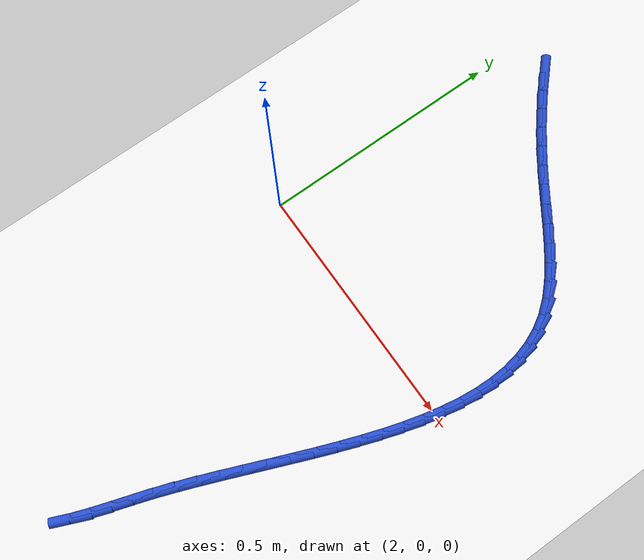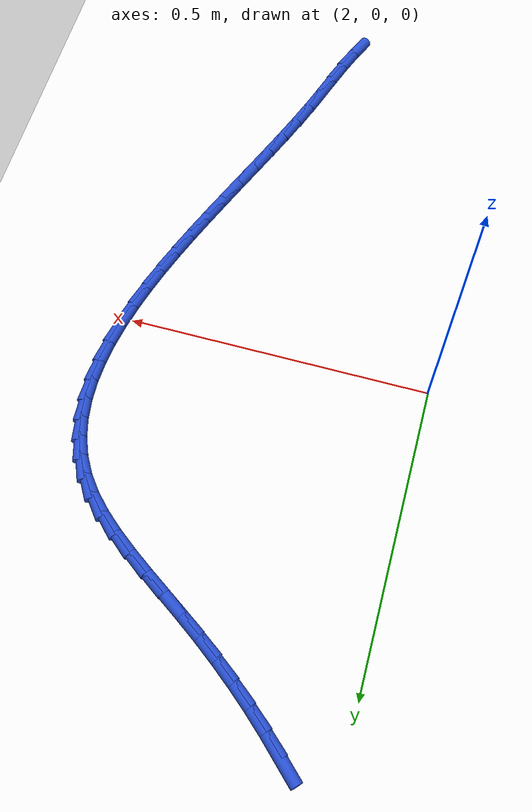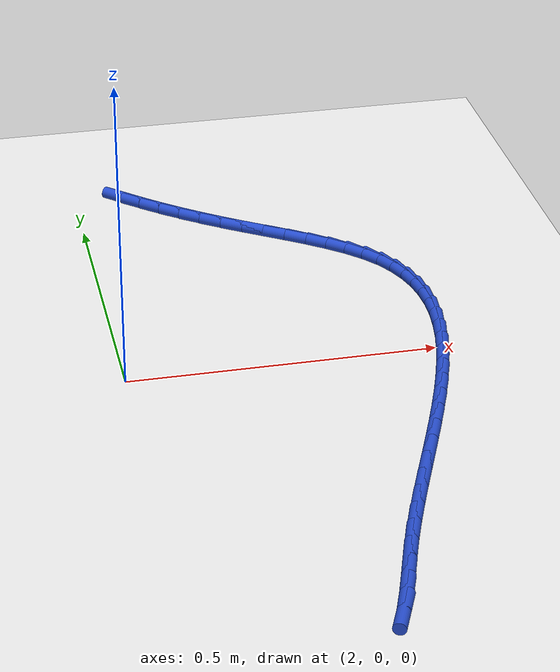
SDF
<sdf version="1.6">
 <world name="default">
  <model name="ground_plane">
   <static>1</static>
   <link name="link">
    <collision name="collision">
     <geometry><plane><normal>0 0 1</normal><size>100 100</size></plane></geometry>
     <surface><friction><ode><mu>100</mu><mu2>50</mu2></ode></friction></surface>
    </collision>
    <visual name="visual">
     <cast_shadows>0</cast_shadows>
     <geometry><plane><normal>0 0 1</normal><size>100 100</size></plane></geometry>
     <material>
      <script><uri>file://media/materials/scripts/gazebo.material</uri><name>Gazebo/WhiteGlow</name></script>
     </material>
    </visual>
   </link>
  </model>
  <model name="line">
   <link name="link_95">
    <pose>2.0854577750465038 0.6033049746683188 0.01 0 1.57 -0.7584106347715007</pose>
    <collision name="collision">
     <geometry><cylinder><radius>0.01</radius><length>0.08</length></cylinder></geometry>
    </collision>
    <visual name="visual">
     <material>
      <script><name>Gazebo/Blue</name><uri>file://media/materials/scripts/gazebo.material</uri></script>
     </material>
     <geometry><cylinder><radius>0.01</radius><length>0.08</length></cylinder></geometry>
    </visual>
   </link>
   <link name="link_96">
    <pose>2.114498743311361 0.5757906642588572 0.01 0 1.57 -0.7253716023526059</pose>
    <collision name="collision">
     <geometry><cylinder><radius>0.01</radius><length>0.08</length></cylinder></geometry>
    </collision>
    <visual name="visual">
     <material>
      <script><name>Gazebo/Blue</name><uri>file://media/materials/scripts/gazebo.material</uri></script>
     </material>
     <geometry><cylinder><radius>0.01</radius><length>0.08</length></cylinder></geometry>
    </visual>
   </link>
   <link name="link_97">
    <pose>2.144657502411811 0.5490514055206867 0.01 0 1.57 -0.6937568444363156</pose>
    <collision name="collision">
     <geometry><cylinder><radius>0.01</radius><length>0.08</length></cylinder></geometry>
    </collision>
    <visual name="visual">
     <material>
      <script><name>Gazebo/Blue</name><uri>file://media/materials/scripts/gazebo.material</uri></script>
     </material>
     <geometry><cylinder><radius>0.01</radius><length>0.08</length></cylinder></geometry>
    </visual>
   </link>
   <link name="link_98">
    <pose>2.175849003187169 0.5231103167277441 0.01 0 1.57 -0.6634165737298975</pose>
    <collision name="collision">
     <geometry><cylinder><radius>0.01</radius><length>0.08</length></cylinder></geometry>
    </collision>
    <visual name="visual">
     <material>
      <script><name>Gazebo/Blue</name><uri>file://media/materials/scripts/gazebo.material</uri></script>
     </material>
     <geometry><cylinder><radius>0.01</radius><length>0.08</length></cylinder></geometry>
    </visual>
   </link>
   <link name="link_99">
    <pose>2.207988196476752 0.49799051615396644 0.01 0 1.57 -0.6342063473897935</pose>
    <collision name="collision">
     <geometry><cylinder><radius>0.01</radius><length>0.08</length></cylinder></geometry>
    </collision>
    <visual name="visual">
     <material>
      <script><name>Gazebo/Blue</name><uri>file://media/materials/scripts/gazebo.material</uri></script>
     </material>
     <geometry><cylinder><radius>0.01</radius><length>0.08</length></cylinder></geometry>
    </visual>
   </link>
   <link name="link_100">
    <pose>2.2409900331198744 0.4737151220732913 0.01 0 1.57 -0.6064828053947958</pose>
    <collision name="collision">
     <geometry><cylinder><radius>0.01</radius><length>0.08</length></cylinder></geometry>
    </collision>
    <visual name="visual">
     <material>
      <script><name>Gazebo/Blue</name><uri>file://media/materials/scripts/gazebo.material</uri></script>
     </material>
     <geometry><cylinder><radius>0.01</radius><length>0.08</length></cylinder></geometry>
    </visual>
   </link>
   <link name="link_101">
    <pose>2.274750701201509 0.4502954688941986 0.01 0 1.57 -0.5886555911151671</pose>
    <collision name="collision">
     <geometry><cylinder><radius>0.01</radius><length>0.08</length></cylinder></geometry>
    </collision>
    <visual name="visual">
     <material>
      <script><name>Gazebo/Blue</name><uri>file://media/materials/scripts/gazebo.material</uri></script>
     </material>
     <geometry><cylinder><radius>0.01</radius><length>0.08</length></cylinder></geometry>
    </visual>
   </link>
   <link name="link_102">
    <pose>2.308839381430467 0.4275375154788397 0.01 0 1.57 -0.5878506283056106</pose>
    <collision name="collision">
     <geometry><cylinder><radius>0.01</radius><length>0.08</length></cylinder></geometry>
    </collision>
    <visual name="visual">
     <material>
      <script><name>Gazebo/Blue</name><uri>file://media/materials/scripts/gazebo.material</uri></script>
     </material>
     <geometry><cylinder><radius>0.01</radius><length>0.08</length></cylinder></geometry>
    </visual>
   </link>
   <link name="link_103">
    <pose>2.3425475441071213 0.4050728058870897 0.01 0 1.57 -0.6049039102393619</pose>
    <collision name="collision">
     <geometry><cylinder><radius>0.01</radius><length>0.08</length></cylinder></geometry>
    </collision>
    <visual name="visual">
     <material>
      <script><name>Gazebo/Blue</name><uri>file://media/materials/scripts/gazebo.material</uri></script>
     </material>
     <geometry><cylinder><radius>0.01</radius><length>0.08</length></cylinder></geometry>
    </visual>
   </link>
   <link name="link_104">
    <pose>2.3751578387687227 0.38252734433729074 0.01 0 1.57 -0.641500957812803</pose>
    <collision name="collision">
     <geometry><cylinder><radius>0.01</radius><length>0.08</length></cylinder></geometry>
    </collision>
    <visual name="visual">
     <material>
      <script><name>Gazebo/Blue</name><uri>file://media/materials/scripts/gazebo.material</uri></script>
     </material>
     <geometry><cylinder><radius>0.01</radius><length>0.08</length></cylinder></geometry>
    </visual>
   </link>
   <link name="link_105">
    <pose>2.405952914952524 0.35952713504778383 0.01 0 1.57 -0.7004918208982428</pose>
    <collision name="collision">
     <geometry><cylinder><radius>0.01</radius><length>0.08</length></cylinder></geometry>
    </collision>
    <visual name="visual">
     <material>
      <script><name>Gazebo/Blue</name><uri>file://media/materials/scripts/gazebo.material</uri></script>
     </material>
     <geometry><cylinder><radius>0.01</radius><length>0.08</length></cylinder></geometry>
    </visual>
   </link>
   <link name="link_106">
    <pose>2.434215422195778 0.33569818223691134 0.01 0 1.57 -0.7857799107825099</pose>
    <collision name="collision">
     <geometry><cylinder><radius>0.01</radius><length>0.08</length></cylinder></geometry>
    </collision>
    <visual name="visual">
     <material>
      <script><name>Gazebo/Blue</name><uri>file://media/materials/scripts/gazebo.material</uri></script>
     </material>
     <geometry><cylinder><radius>0.01</radius><length>0.08</length></cylinder></geometry>
    </visual>
   </link>
   <link name="link_107">
    <pose>2.459228010035737 0.31066649012301445 0.01 0 1.57 -0.9014815843649162</pose>
    <collision name="collision">
     <geometry><cylinder><radius>0.01</radius><length>0.08</length></cylinder></geometry>
    </collision>
    <visual name="visual">
     <material>
      <script><name>Gazebo/Blue</name><uri>file://media/materials/scripts/gazebo.material</uri></script>
     </material>
     <geometry><cylinder><radius>0.01</radius><length>0.08</length></cylinder></geometry>
    </visual>
   </link>
   <link name="link_108">
    <pose>2.480277383181496 0.2840600881281208 0.01 0 1.57 -1.0386955093817873</pose>
    <collision name="collision">
     <geometry><cylinder><radius>0.01</radius><length>0.08</length></cylinder></geometry>
    </collision>
    <visual name="visual">
     <material>
      <script><name>Gazebo/Blue</name><uri>file://media/materials/scripts/gazebo.material</uri></script>
     </material>
     <geometry><cylinder><radius>0.01</radius><length>0.08</length></cylinder></geometry>
    </visual>
   </link>
   <link name="link_109">
    <pose>2.496988377695209 0.2556758727135417 0.01 0 1.57 -1.1744489095808566</pose>
    <collision name="collision">
     <geometry><cylinder><radius>0.01</radius><length>0.08</length></cylinder></geometry>
    </collision>
    <visual name="visual">
     <material>
      <script><name>Gazebo/Blue</name><uri>file://media/materials/scripts/gazebo.material</uri></script>
     </material>
     <geometry><cylinder><radius>0.01</radius><length>0.08</length></cylinder></geometry>
    </visual>
   </link>
   <link name="link_110">
    <pose>2.5095732434947133 0.22560410218871085 0.01 0 1.57 -1.3015843641063687</pose>
    <collision name="collision">
     <geometry><cylinder><radius>0.01</radius><length>0.08</length></cylinder></geometry>
    </collision>
    <visual name="visual">
     <material>
      <script><name>Gazebo/Blue</name><uri>file://media/materials/scripts/gazebo.material</uri></script>
     </material>
     <geometry><cylinder><radius>0.01</radius><length>0.08</length></cylinder></geometry>
    </visual>
   </link>
   <link name="link_111">
    <pose>2.5183029608211194 0.19396436552322818 0.01 0 1.57 -1.416521543204537</pose>
    <collision name="collision">
     <geometry><cylinder><radius>0.01</radius><length>0.08</length></cylinder></geometry>
    </collision>
    <visual name="visual">
     <material>
      <script><name>Gazebo/Blue</name><uri>file://media/materials/scripts/gazebo.material</uri></script>
     </material>
     <geometry><cylinder><radius>0.01</radius><length>0.08</length></cylinder></geometry>
    </visual>
   </link>
   <link name="link_112">
    <pose>2.5234485099155424 0.16087625168669223 0.01 0 1.57 -1.517606392508967</pose>
    <collision name="collision">
     <geometry><cylinder><radius>0.01</radius><length>0.08</length></cylinder></geometry>
    </collision>
    <visual name="visual">
     <material>
      <script><name>Gazebo/Blue</name><uri>file://media/materials/scripts/gazebo.material</uri></script>
     </material>
     <geometry><cylinder><radius>0.01</radius><length>0.08</length></cylinder></geometry>
    </visual>
   </link>
   <link name="link_113">
    <pose>2.5252808710190906 0.12645934964870295 0.01 0 1.57 1.5368498145802738</pose>
    <collision name="collision">
     <geometry><cylinder><radius>0.01</radius><length>0.08</length></cylinder></geometry>
    </collision>
    <visual name="visual">
     <material>
      <script><name>Gazebo/Blue</name><uri>file://media/materials/scripts/gazebo.material</uri></script>
     </material>
     <geometry><cylinder><radius>0.01</radius><length>0.08</length></cylinder></geometry>
    </visual>
   </link>
   <link name="link_114">
    <pose>2.524071024372879 0.09083324837885881 0.01 0 1.57 1.4627885748509004</pose>
    <collision name="collision">
     <geometry><cylinder><radius>0.01</radius><length>0.08</length></cylinder></geometry>
    </collision>
    <visual name="visual">
     <material>
      <script><name>Gazebo/Blue</name><uri>file://media/materials/scripts/gazebo.material</uri></script>
     </material>
     <geometry><cylinder><radius>0.01</radius><length>0.08</length></cylinder></geometry>
    </visual>
   </link>
   <link name="link_115">
    <pose>2.520089950218018 0.054117536846759864 0.01 0 1.57 1.4004790890435928</pose>
    <collision name="collision">
     <geometry><cylinder><radius>0.01</radius><length>0.08</length></cylinder></geometry>
    </collision>
    <visual name="visual">
     <material>
      <script><name>Gazebo/Blue</name><uri>file://media/materials/scripts/gazebo.material</uri></script>
     </material>
     <geometry><cylinder><radius>0.01</radius><length>0.08</length></cylinder></geometry>
    </visual>
   </link>
   <link name="link_116">
    <pose>2.5136086287956205 0.016431804022004958 0.01 0 1.57 1.3484953368697115</pose>
    <collision name="collision">
     <geometry><cylinder><radius>0.01</radius><length>0.08</length></cylinder></geometry>
    </collision>
    <visual name="visual">
     <material>
      <script><name>Gazebo/Blue</name><uri>file://media/materials/scripts/gazebo.material</uri></script>
     </material>
     <geometry><cylinder><radius>0.01</radius><length>0.08</length></cylinder></geometry>
    </visual>
   </link>
   <link name="link_117">
    <pose>2.504898040346798 -0.022104361125807614 0.01 0 1.57 1.3054999922596893</pose>
    <collision name="collision">
     <geometry><cylinder><radius>0.01</radius><length>0.08</length></cylinder></geometry>
    </collision>
    <visual name="visual">
     <material>
      <script><name>Gazebo/Blue</name><uri>file://media/materials/scripts/gazebo.material</uri></script>
     </material>
     <geometry><cylinder><radius>0.01</radius><length>0.08</length></cylinder></geometry>
    </visual>
   </link>
   <link name="link_118">
    <pose>2.4942291651126633 -0.061371369627076754 0.01 0 1.57 1.2703297530629334</pose>
    <collision name="collision">
     <geometry><cylinder><radius>0.01</radius><length>0.08</length></cylinder></geometry>
    </collision>
    <visual name="visual">
     <material>
      <script><name>Gazebo/Blue</name><uri>file://media/materials/scripts/gazebo.material</uri></script>
     </material>
     <geometry><cylinder><radius>0.01</radius><length>0.08</length></cylinder></geometry>
    </visual>
   </link>
   <link name="link_119">
    <pose>2.4818729833343287 -0.10124963251220417 0.01 0 1.57 1.2420205333198986</pose>
    <collision name="collision">
     <geometry><cylinder><radius>0.01</radius><length>0.08</length></cylinder></geometry>
    </collision>
    <visual name="visual">
     <material>
      <script><name>Gazebo/Blue</name><uri>file://media/materials/scripts/gazebo.material</uri></script>
     </material>
     <geometry><cylinder><radius>0.01</radius><length>0.08</length></cylinder></geometry>
    </visual>
   </link>
   <link name="link_120">
    <pose>2.468100475252906 -0.14161956081159058 0.01 0 1.57 1.2198033846943448</pose>
    <collision name="collision">
     <geometry><cylinder><radius>0.01</radius><length>0.08</length></cylinder></geometry>
    </collision>
    <visual name="visual">
     <material>
      <script><name>Gazebo/Blue</name><uri>file://media/materials/scripts/gazebo.material</uri></script>
     </material>
     <geometry><cylinder><radius>0.01</radius><length>0.08</length></cylinder></geometry>
    </visual>
   </link>
   <link name="link_121">
    <pose>2.4531826211095065 -0.1823615655556367 0.01 0 1.57 1.203089065928777</pose>
    <collision name="collision">
     <geometry><cylinder><radius>0.01</radius><length>0.08</length></cylinder></geometry>
    </collision>
    <visual name="visual">
     <material>
      <script><name>Gazebo/Blue</name><uri>file://media/materials/scripts/gazebo.material</uri></script>
     </material>
     <geometry><cylinder><radius>0.01</radius><length>0.08</length></cylinder></geometry>
    </visual>
   </link>
   <link name="link_122">
    <pose>2.437390401145244 -0.2233560577747445 0.01 0 1.57 1.1914506917664192</pose>
    <collision name="collision">
     <geometry><cylinder><radius>0.01</radius><length>0.08</length></cylinder></geometry>
    </collision>
    <visual name="visual">
     <material>
      <script><name>Gazebo/Blue</name><uri>file://media/materials/scripts/gazebo.material</uri></script>
     </material>
     <geometry><cylinder><radius>0.01</radius><length>0.08</length></cylinder></geometry>
    </visual>
   </link>
   <link name="link_123">
    <pose>2.420994795601228 -0.2644834484993125 0.01 0 1.57 1.1846090582874373</pose>
    <collision name="collision">
     <geometry><cylinder><radius>0.01</radius><length>0.08</length></cylinder></geometry>
    </collision>
    <visual name="visual">
     <material>
      <script><name>Gazebo/Blue</name><uri>file://media/materials/scripts/gazebo.material</uri></script>
     </material>
     <geometry><cylinder><radius>0.01</radius><length>0.08</length></cylinder></geometry>
    </visual>
   </link>
   <link name="link_124">
    <pose>2.4042667847185735 -0.30562414875974264 0.01 0 1.57 1.1824227588283078</pose>
    <collision name="collision">
     <geometry><cylinder><radius>0.01</radius><length>0.08</length></cylinder></geometry>
    </collision>
    <visual name="visual">
     <material>
      <script><name>Gazebo/Blue</name><uri>file://media/materials/scripts/gazebo.material</uri></script>
     </material>
     <geometry><cylinder><radius>0.01</radius><length>0.08</length></cylinder></geometry>
    </visual>
   </link>
   <link name="link_125">
    <pose>2.387477348738391 -0.3466585695864356 0.01 0 1.57 1.1848840761501118</pose>
    <collision name="collision">
     <geometry><cylinder><radius>0.01</radius><length>0.08</length></cylinder></geometry>
    </collision>
    <visual name="visual">
     <material>
      <script><name>Gazebo/Blue</name><uri>file://media/materials/scripts/gazebo.material</uri></script>
     </material>
     <geometry><cylinder><radius>0.01</radius><length>0.08</length></cylinder></geometry>
    </visual>
   </link>
   <link name="link_126">
    <pose>2.370897467901792 -0.38746712200979294 0.01 0 1.57 1.1921212350513166</pose>
    <collision name="collision">
     <geometry><cylinder><radius>0.01</radius><length>0.08</length></cylinder></geometry>
    </collision>
    <visual name="visual">
     <material>
      <script><name>Gazebo/Blue</name><uri>file://media/materials/scripts/gazebo.material</uri></script>
     </material>
     <geometry><cylinder><radius>0.01</radius><length>0.08</length></cylinder></geometry>
    </visual>
   </link>
   <link name="link_127">
    <pose>2.354798122449891 -0.42793021706021395 0.01 0 1.57 1.2044075522762234</pose>
    <collision name="collision">
     <geometry><cylinder><radius>0.01</radius><length>0.08</length></cylinder></geometry>
    </collision>
    <visual name="visual">
     <material>
      <script><name>Gazebo/Blue</name><uri>file://media/materials/scripts/gazebo.material</uri></script>
     </material>
     <geometry><cylinder><radius>0.01</radius><length>0.08</length></cylinder></geometry>
    </visual>
   </link>
   <link name="link_128">
    <pose>2.3394502926237983 -0.46792826576809987 0.01 0 1.57 1.2221780790470367</pose>
    <collision name="collision">
     <geometry><cylinder><radius>0.01</radius><length>0.08</length></cylinder></geometry>
    </collision>
    <visual name="visual">
     <material>
      <script><name>Gazebo/Blue</name><uri>file://media/materials/scripts/gazebo.material</uri></script>
     </material>
     <geometry><cylinder><radius>0.01</radius><length>0.08</length></cylinder></geometry>
    </visual>
   </link>
   <link name="link_129">
    <pose>2.3251249586646257 -0.5073416791638516 0.01 0 1.57 1.244852570734548</pose>
    <collision name="collision">
     <geometry><cylinder><radius>0.01</radius><length>0.08</length></cylinder></geometry>
    </collision>
    <visual name="visual">
     <material>
      <script><name>Gazebo/Blue</name><uri>file://media/materials/scripts/gazebo.material</uri></script>
     </material>
     <geometry><cylinder><radius>0.01</radius><length>0.08</length></cylinder></geometry>
    </visual>
   </link>
   <link name="link_130">
    <pose>2.3120420121365868 -0.5460487366459496 0.01 0 1.57 1.258116011314498</pose>
    <collision name="collision">
     <geometry><cylinder><radius>0.01</radius><length>0.08</length></cylinder></geometry>
    </collision>
    <visual name="visual">
     <material>
      <script><name>Gazebo/Blue</name><uri>file://media/materials/scripts/gazebo.material</uri></script>
     </material>
     <geometry><cylinder><radius>0.01</radius><length>0.08</length></cylinder></geometry>
    </visual>
   </link>
   <link name="link_131">
    <pose>2.299804609882451 -0.5839019848771962 0.01 0 1.57 1.2510163141170183</pose>
    <collision name="collision">
     <geometry><cylinder><radius>0.01</radius><length>0.08</length></cylinder></geometry>
    </collision>
    <visual name="visual">
     <material>
      <script><name>Gazebo/Blue</name><uri>file://media/materials/scripts/gazebo.material</uri></script>
     </material>
     <geometry><cylinder><radius>0.01</radius><length>0.08</length></cylinder></geometry>
    </visual>
   </link>
   <link name="link_132">
    <pose>2.287606900065139 -0.620736904978462 0.01 0 1.57 1.2218537954382922</pose>
    <collision name="collision">
     <geometry><cylinder><radius>0.01</radius><length>0.08</length></cylinder></geometry>
    </collision>
    <visual name="visual">
     <material>
      <script><name>Gazebo/Blue</name><uri>file://media/materials/scripts/gazebo.material</uri></script>
     </material>
     <geometry><cylinder><radius>0.01</radius><length>0.08</length></cylinder></geometry>
    </visual>
   </link>
   <link name="link_133">
    <pose>2.2746356967944745 -0.6563886720634444 0.01 0 1.57 1.169449940163644</pose>
    <collision name="collision">
     <geometry><cylinder><radius>0.01</radius><length>0.08</length></cylinder></geometry>
    </collision>
    <visual name="visual">
     <material>
      <script><name>Gazebo/Blue</name><uri>file://media/materials/scripts/gazebo.material</uri></script>
     </material>
     <geometry><cylinder><radius>0.01</radius><length>0.08</length></cylinder></geometry>
    </visual>
   </link>
  </model>
 </world>
</sdf>
